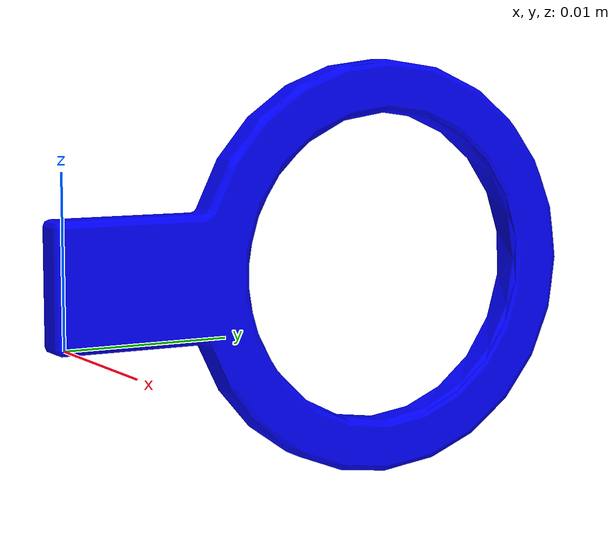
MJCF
<mujoco model="round_latch_handle">
  <default>
    <default class="visual">
      <geom group="2" type="mesh" contype="0" conaffinity="0"/>
    </default>
    <default class="collision">
      <geom group="3" type="mesh"/>
    </default>
  </default>
  <asset>
    <material name="mtl_round_latch_handle" specular="0.20000000000000004" shininess="1.0" rgba="0.00000000 0.00000000 1.00000000 1.0"/>
    <mesh file="round_latch_handle.obj"/>
  </asset>
  <worldbody>
    <body name="round_latch_handle">
      <geom material="mtl_round_latch_handle" mesh="round_latch_handle" class="visual"/>
      <geom mesh="round_latch_handle" class="collision"/>
    </body>
  </worldbody>
</mujoco>
